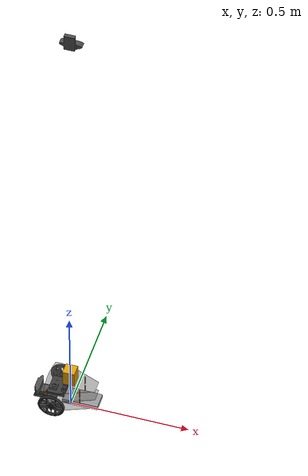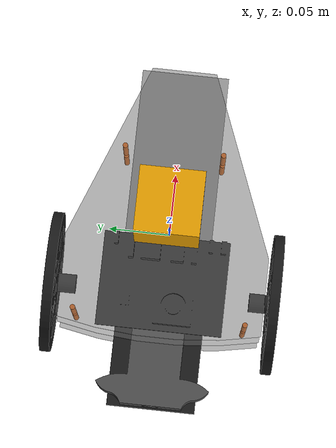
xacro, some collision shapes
<?xml version="1.0"?>
<robot name="puzzlebot" xmlns:xacro="http://ros.org/wiki/xacro">
  <xacro:property name="package_name" value="gemelo_digital_puzzlebot"/>
  <xacro:property name="PI" value="3.14159265"/>
  <xacro:property name="wheelSeparation" value="0.209"/> <!--0.17 (bien en simulación) | 0.207 (bien en gemelo)-->
  <xacro:property name="wheelDiameter" value="0.112"/>
  <xacro:property name="wheelThickness" value="0.008"/>
  <xacro:property name="base_elevation" value="0.025"/>

  <xacro:arg name="base_color"    default="0.0 1.0 0.0 1.0"/>
  <xacro:arg name="ns" default="r1"/>

  <material name="gray">
    <color rgba="0.4 0.4 0.4 0.5"/>
  </material>

  <material name="gray2">
    <color rgba="0.6 0.6 0.6 1.0"/>
  </material>
  <material name="gray3">
    <color rgba="0.3 0.3 0.3 1.0"/>
  </material>

  <material name="black">
    <color rgba="0.1 0.1 0.1 1.0"/>
  </material>

  <material name="golden">
    <color rgba="1.0 0.4 0.0 1.0"/>
  </material>

  <material name="red">
    <color rgba="1.0 0.0 0.0 1.0"/>
  </material>

  <link name="$(arg ns)/base_footprint"/>

  <joint name="$(arg ns)/base1_joint" type="fixed">
    <parent link="$(arg ns)/base_footprint"/>
    <child link="$(arg ns)/base1_link"/>
    <origin xyz="0 0 ${wheelDiameter/2-base_elevation}" rpy = "0 0 0"/> <!--0 ${wheelSeparation/2} ${wheelDiameter/2-base_elevation}-->
    <axis xyz="0 0 0"/>
  </joint>

  <link name="$(arg ns)/base1_link">
    <visual>
      <origin xyz="0.0 0.0 0.0" rpy="0 0 ${PI}"/>
      <geometry>
        <mesh filename = "package://${package_name}/meshes/base_puzzlebot.stl" scale="0.01 0.01 0.01"/>
      </geometry>
      <material name="gray"/>
    </visual>
    <collision>
      <origin xyz="0.01 0 0.0025" rpy="0 0 ${PI/2}"/>
      <geometry>
        <box size="0.16 0.21 0.005"/>
      </geometry>
    </collision>
    <inertial>
      <origin xyz="-0.0550 0 0" rpy="0 0 0"/>
      <mass value="0.485"/>
      <inertia ixx="0.001881" ixy="0.0" ixz="0.0" iyy="0.001133" iyz="0.0" izz="0.002815" />
    </inertial>
  </link>

  <joint name="$(arg ns)/base2_joint" type="fixed">
      <parent link="$(arg ns)/base1_link"/>
      <child link="$(arg ns)/base2_link"/>
      <origin xyz="0 0 ${wheelDiameter/2-base_elevation + 0.020}" rpy = "0 0 0"/>
      <axis xyz="0 0 0"/>
    </joint>

    <link name="$(arg ns)/base2_link">
      <visual>
        <origin xyz="0 0 0" rpy="0 0 ${PI}"/>
        <geometry>
          <mesh filename = "package://${package_name}/meshes/base_puzzlebot.stl" scale="0.01 0.01 0.01"/>
        </geometry>
        <material name="gray"/>
      </visual>
      <collision>
        <origin xyz="0.01 0 0.0025" rpy="0 0 ${PI/2}"/>
        <geometry>
          <box size="0.16 0.21 0.005"/>
        </geometry>
      </collision>
    </link>

    <joint name="$(arg ns)/base3_joint" type="fixed">
      <parent link="$(arg ns)/base2_link"/>
      <child link="$(arg ns)/base3_link"/>
      <origin xyz="0 0 ${wheelDiameter/2-base_elevation + 0.020}" rpy = "0 0 0"/>
      <axis xyz="0 0 0"/>
    </joint>

    <link name="$(arg ns)/base3_link">
      <visual>
        <origin xyz="0 0 0" rpy="0 0 ${PI}"/>
        <geometry>
          <mesh filename = "package://${package_name}/meshes/base_puzzlebot.stl" scale="0.01 0.01 0.01"/>
        </geometry>
        <material name="gray"/>
      </visual>
      <collision>
        <origin xyz="0.01 0 0.0025" rpy="0 0 ${PI/2}"/>
        <geometry>
          <box size="0.16 0.21 0.005"/>
        </geometry>
      </collision>
    </link>

    <joint name="$(arg ns)/rubik_joint" type="fixed">
      <parent link="$(arg ns)/base2_link"/>
      <child link="$(arg ns)/rubik_link"/>
      <origin xyz="-0.05 0 0.005" rpy = "0 0 ${PI/2}"/>
      <axis xyz="0 0 0"/>
    </joint>

    <link name="$(arg ns)/rubik_link">
      <visual>
        <origin xyz="0 0 0" rpy="0 0 0"/>
        <geometry>
          <mesh filename = "package://${package_name}/meshes/rubik.stl" scale="0.001 0.001 0.001"/>
        </geometry>
        <material name="black"/>
      </visual>
      <collision>
        <origin xyz="0 0 0" rpy="0 0 0"/>
        <geometry>
          <box size="0.1 0.07 0.002"/>
        </geometry>
      </collision>
    </link>

    <joint name="$(arg ns)/battery_joint" type="fixed">
      <parent link="$(arg ns)/base1_link"/>
      <child link="$(arg ns)/battery_link"/>
      <origin xyz="0.05 0 0.0145" rpy = "0 0 0"/>
      <axis xyz="0 0 0"/>
    </joint>

    <link name="$(arg ns)/battery_link">
      <visual>
        <origin xyz="0 0 0" rpy="0 0 0"/>
        <geometry>
          <box size="0.15 0.07 0.02"/>
        </geometry>
        <material name="gray2"/>
      </visual>
      <collision>
        <origin xyz="0 0 0" rpy="0 0 0"/>
        <geometry>
          <box size="0.15 0.07 0.02"/>
        </geometry>
      </collision>
      <inertial>
        <origin xyz="0 0 0" rpy="0 0 0"/>
        <mass value="1.0"/>
        <inertia ixx="0.000442" ixy="0.0" ixz="0.0" iyy="0.001908" iyz="0.0" izz="0.002283" />
      </inertial>
    </link>

  <joint name="$(arg ns)/standoff_joint_1" type="fixed">
    <parent link="$(arg ns)/base1_link"/>
    <child link="$(arg ns)/standoff1_link"/>
    <origin xyz="0.05 0.04 ${wheelDiameter/2-base_elevation}" rpy = "0 0 0"/>
    <axis xyz="0 0 0"/>
  </joint>

  <link name="$(arg ns)/standoff1_link">
    <visual>
      <origin xyz="0 0 0" rpy="0 0 0"/>
      <geometry>
        <cylinder length="0.04" radius="0.002"/>
      </geometry>
      <material name="golden"/>
    </visual>
    <collision>
      <origin xyz="0 0 0" rpy="0 0 0"/>
      <geometry>
        <cylinder length="0.04" radius="0.002"/>
      </geometry>
    </collision>
  </link>

  <joint name="$(arg ns)/standoff_joint_2" type="fixed">
    <parent link="$(arg ns)/base1_link"/>
    <child link="$(arg ns)/standoff2_link"/>
    <origin xyz="0.05 -0.037 ${wheelDiameter/2-base_elevation}" rpy = "0 0 0"/>
    <axis xyz="0 0 0"/>
  </joint>

  <link name="$(arg ns)/standoff2_link">
    <visual>
      <origin xyz="0 0 0" rpy="0 0 0"/>
      <geometry>
        <cylinder length="0.04" radius="0.002"/>
      </geometry>
      <material name="golden"/>
    </visual>
    <collision>
      <origin xyz="0 0 0" rpy="0 0 0"/>
      <geometry>
        <cylinder length="0.04" radius="0.002"/>
      </geometry>
    </collision>
  </link>

  <joint name="$(arg ns)/standoff_joint_3" type="fixed">
    <parent link="$(arg ns)/base1_link"/>
    <child link="$(arg ns)/standoff3_link"/>
    <origin xyz="-0.08 -0.067  ${wheelDiameter/2-base_elevation}" rpy = "0 0 0"/>
    <axis xyz="0 0 0"/>
  </joint>

  <link name="$(arg ns)/standoff3_link">
    <visual>
      <origin xyz="0 0 0" rpy="0 0 0"/>
      <geometry>
        <cylinder length="0.04" radius="0.002"/>
      </geometry>
      <material name="golden"/>
    </visual>
    <collision>
      <origin xyz="0 0 0" rpy="0 0 0"/>
      <geometry>
        <cylinder length="0.04" radius="0.002"/>
      </geometry>
    </collision>
  </link>

  <joint name="$(arg ns)/standoff_joint_4" type="fixed">
    <parent link="$(arg ns)/base1_link"/>
    <child link="$(arg ns)/standoff4_link"/>
    <origin xyz="-0.08 0.067 ${wheelDiameter/2-base_elevation}" rpy = "0 0 0"/>
    <axis xyz="0 0 0"/>
  </joint>

  <link name="$(arg ns)/standoff4_link">
    <visual>
      <origin xyz="0 0 0" rpy="0 0 0"/>
      <geometry>
        <cylinder length="0.04" radius="0.002"/>
      </geometry>
      <material name="golden"/>
    </visual>
    <collision>
      <origin xyz="0 0 0" rpy="0 0 0"/>
      <geometry>
        <cylinder length="0.04" radius="0.002"/>
      </geometry>
    </collision>
  </link>

  <!-- Standoffs segundo piso -->
  <joint name="$(arg ns)/standoff_joint_5" type="fixed">
    <parent link="$(arg ns)/base2_link"/>
    <child link="$(arg ns)/standoff5_link"/>
    <origin xyz="0.05 0.04 ${wheelDiameter/2-base_elevation}" rpy = "0 0 0"/>
    <axis xyz="0 0 0"/>
  </joint>

  <link name="$(arg ns)/standoff5_link">
    <visual>
      <origin xyz="0 0 0" rpy="0 0 0"/>
      <geometry>
        <cylinder length="0.04" radius="0.002"/>
      </geometry>
      <material name="golden"/>
    </visual>
    <collision>
      <origin xyz="0 0 0" rpy="0 0 0"/>
      <geometry>
        <cylinder length="0.04" radius="0.002"/>
      </geometry>
    </collision>
  </link>

  <joint name="$(arg ns)/standoff_joint_6" type="fixed">
    <parent link="$(arg ns)/base2_link"/>
    <child link="$(arg ns)/standoff6_link"/>
    <origin xyz="0.05 -0.037 ${wheelDiameter/2-base_elevation}" rpy = "0 0 0"/>
    <axis xyz="0 0 0"/>
  </joint>

  <link name="$(arg ns)/standoff6_link">
    <visual>
      <origin xyz="0 0 0" rpy="0 0 0"/>
      <geometry>
        <cylinder length="0.04" radius="0.002"/>
      </geometry>
      <material name="golden"/>
    </visual>
    <collision>
      <origin xyz="0 0 0" rpy="0 0 0"/>
      <geometry>
        <cylinder length="0.04" radius="0.002"/>
      </geometry>
    </collision>
  </link>

  <joint name="$(arg ns)/standoff_joint_7" type="fixed">
    <parent link="$(arg ns)/base2_link"/>
    <child link="$(arg ns)/standoff7_link"/>
    <origin xyz="-0.08 -0.067  ${wheelDiameter/2-base_elevation}" rpy = "0 0 0"/>
    <axis xyz="0 0 0"/>
  </joint>

  <link name="$(arg ns)/standoff7_link">
    <visual>
      <origin xyz="0 0 0" rpy="0 0 0"/>
      <geometry>
        <cylinder length="0.04" radius="0.002"/>
      </geometry>
      <material name="golden"/>
    </visual>
    <collision>
      <origin xyz="0 0 0" rpy="0 0 0"/>
      <geometry>
        <cylinder length="0.04" radius="0.002"/>
      </geometry>
    </collision>
  </link>

  <joint name="$(arg ns)/standoff_joint_8" type="fixed">
    <parent link="$(arg ns)/base2_link"/>
    <child link="$(arg ns)/standoff8_link"/>
    <origin xyz="-0.08 0.067 ${wheelDiameter/2-base_elevation}" rpy = "0 0 0"/>
    <axis xyz="0 0 0"/>
  </joint>

  <link name="$(arg ns)/standoff8_link">
    <visual>
      <origin xyz="0 0 0" rpy="0 0 0"/>
      <geometry>
        <cylinder length="0.04" radius="0.002"/>
      </geometry>
      <material name="golden"/>
    </visual>
    <collision>
      <origin xyz="0 0 0" rpy="0 0 0"/>
      <geometry>
        <cylinder length="0.04" radius="0.002"/>
      </geometry>
    </collision>
  </link>

  <joint name="$(arg ns)/base_panel_right_wheel_joint" type="fixed">
    <parent link="$(arg ns)/base1_link"/>
    <child link="$(arg ns)/right_panel_link"/>
    <origin xyz="-0.0550 0.073 ${wheelDiameter/2-base_elevation}" rpy = "0 0 0"/>
    <axis xyz="0 0 0"/>
  </joint>

  <link name="$(arg ns)/right_panel_link">
    <visual>
      <origin xyz="0 0 0" rpy="0 0 0"/>
      <geometry>
        <box size="0.025 0.005 0.04"/>
      </geometry>
      <material name="gray"/>
    </visual>
    <collision>
      <origin xyz="0 0 0" rpy="0 0 0"/>
      <geometry>
        <box size="0.025 0.005 0.04"/>
      </geometry>
    </collision>
  </link>

  <joint name="$(arg ns)/base_panel_left_wheel_joint" type="fixed">
    <parent link="$(arg ns)/base1_link"/>
    <child link="$(arg ns)/left_panel_link"/>
    <origin xyz="-0.0550 -0.073 ${wheelDiameter/2-base_elevation}" rpy = "0 0 0"/>
    <axis xyz="0 0 0"/>
  </joint>

  <link name="$(arg ns)/left_panel_link">
    <visual>
      <origin xyz="0 0 0" rpy="0 0 0"/>
      <geometry>
        <box size="0.025 0.005 0.04"/>
      </geometry>
      <material name="gray"/>
    </visual>
    <collision>
      <origin xyz="0 0 0" rpy="0 0 0"/>
      <geometry>
        <box size="0.025 0.005 0.04"/>
      </geometry>
    </collision>
  </link>

  <joint name="$(arg ns)/cylinder_wheel_right_joint" type="fixed">
    <parent link="$(arg ns)/right_panel_link"/>
    <child link="$(arg ns)/cylinder_wheel_right_link"/>
    <origin xyz="0 0.004 0" rpy = "0 0 0"/>
    <axis xyz="0 0 0"/>
  </joint>

  <link name="$(arg ns)/cylinder_wheel_right_link">
    <visual>
      <origin xyz="0 0 0" rpy="${PI/2} 0 0"/>
      <geometry>
        <cylinder length="0.015" radius="0.0075"/>
      </geometry>
      <material name="black"/>
    </visual>
    <collision>
      <origin xyz="0 0 0" rpy="${PI/2} 0 0"/>
      <geometry>
        <cylinder length="0.015" radius="0.0075"/>
      </geometry>
    </collision>
  </link>

  <joint name="$(arg ns)/cylinder_wheel_left_joint" type="fixed">
    <parent link="$(arg ns)/left_panel_link"/>
    <child link="$(arg ns)/cylinder_wheel_left_link"/>
    <origin xyz="0 -0.004 0" rpy = "0 0 0"/>
    <axis xyz="0 0 0"/>
  </joint>

  <link name="$(arg ns)/cylinder_wheel_left_link">
    <visual>
      <origin xyz="0 0 0" rpy="${-PI/2} 0 0"/>
      <geometry>
        <cylinder length="0.015" radius="0.0075"/>
      </geometry>
      <material name="black"/>
    </visual>
    <collision>
      <origin xyz="0 0 0" rpy="${-PI/2} 0 0"/>
      <geometry>
        <cylinder length="0.015" radius="0.0075"/>
      </geometry>
    </collision>
  </link>

  <joint name="$(arg ns)/wheel_right_joint" type="continuous">
    <parent link="$(arg ns)/cylinder_wheel_right_link"/>
    <child link="$(arg ns)/wheel_right_link"/>
    <origin xyz="0 0.0155 0" rpy = "0 0 0"/>
    <axis xyz="0 -1 0"/>
  </joint>

  <link name="$(arg ns)/wheel_right_link">
    <visual>
      <origin xyz="0 0 0" rpy="${PI/2} 0 0"/>
      <geometry>
        <mesh filename = "package://${package_name}/meshes/rueda_puzzlebot.stl" scale="0.001 0.001 0.001"/>
      </geometry>
      <material name="black"/>
    </visual>
    <collision>
      <origin xyz="0 -0.005 0" rpy="${PI/2} 0 0"/>
      <geometry>
        <cylinder length="0.008" radius="0.056"/>
      </geometry>
    </collision>
    <inertial>
      <origin xyz="0 0 0" />
      <mass value="0.056" />
      <inertia ixx="0.000035" ixy="0.0" ixz="0.0" iyy="0.00007" iyz="0.0" izz="0.000035" />
    </inertial>
  </link>

  <joint name="$(arg ns)/wheel_left_joint" type="continuous">
    <parent link="$(arg ns)/cylinder_wheel_left_link"/>
    <child link="$(arg ns)/wheel_left_link"/>
    <origin xyz="0.0 -0.0075 0" rpy = "0 0 0"/>
    <axis xyz="0 -1 0"/>
  </joint>

  <link name="$(arg ns)/wheel_left_link">
    <visual>
      <origin xyz="0 0 0" rpy="${PI/2} 0 0"/>
      <geometry>
        <mesh filename = "package://${package_name}/meshes/rueda_puzzlebot.stl" scale="0.001 0.001 0.001"/>
      </geometry>
      <material name="black"/>
    </visual>
    <collision>
      <origin xyz="0 0 0" rpy="${PI/2} 0 0"/>
      <geometry>
        <cylinder length="0.008" radius="0.056"/>
      </geometry>
    </collision>
    <inertial>
      <origin xyz="0 0 0" />
      <mass value="0.056" />
      <inertia ixx="0.000035" ixy="0.0" ixz="0.0" iyy="0.00007" iyz="0.0" izz="0.000035" />
    </inertial>
  </link>

  <joint name="$(arg ns)/caster_wheel_joint" type="fixed">
    <parent link="$(arg ns)/base1_link"/>
    <child link="$(arg ns)/caster_wheel_link"/>
    <origin xyz="0.1 0 -0.0125" rpy="0 0 0"/>
  </joint>

  <link name="$(arg ns)/caster_wheel_link">
    <visual>
      <origin xyz="0 0 0" rpy="0 0 0"/>
      <geometry>
        <sphere radius="0.0125"/>
      </geometry>
      <material name="black"/>
    </visual>

    <collision>
      <origin xyz="0 0 0" rpy="0 0 0"/>
      <geometry>
        <sphere radius="0.0125"/>
      </geometry>
    </collision>

    <inertial>
      <mass value="0.01"/>
      <origin xyz="0 0 0" rpy="0 0 0"/>
      <inertia
        ixx="0.000000625" ixy="0" ixz="0"
        iyy="0.000000625" iyz="0"
        izz="0.000000625"/>
    </inertial>
  </link>

   <!-- Camara LOGI -->

   <joint name="$(arg ns)/base_camera_logi_joint" type="fixed">
    <parent link="$(arg ns)/base1_link"/>
    <child link="$(arg ns)/base_camera_logi_link"/>
    <origin xyz="-0.1 0 0.0075" rpy="0 0 ${-PI/2}"/>
  </joint>

  <link name="$(arg ns)/base_camera_logi_link">
    <visual>
      <origin xyz="0 0 0" rpy="0 0 0"/>
      <geometry>
        <box size="0.071 0.094 0.005"/>
      </geometry>
      <material name="black"/>
    </visual>
    <collision>
      <origin xyz="0 0 0" rpy="0 0 0"/>
      <geometry>
        <box size="0.071 0.094 0.005"/>
      </geometry>
    </collision>
  </link>

  <joint name="$(arg ns)/logi_camera_joint" type="fixed">
    <parent link="$(arg ns)/base_camera_logi_link"/>
    <child link="$(arg ns)/logi_camera_link"/>
    <origin xyz="0.008 0 0.0025" rpy="0 0 ${-PI/2}"/>
    <axis xyz="0 0 1" />
  </joint>

  <link name="$(arg ns)/logi_camera_link">
    <visual>
      <origin xyz="0 0 0" rpy="0 0 0"/>
      <geometry>
        <mesh filename = "package://${package_name}/meshes/logi_camera.stl" scale="0.001 0.001 0.001"/>
      </geometry>
      <material name="gray3"/>
    </visual>
    <collision>
      <origin xyz="0 0 0" rpy="0 0 0"/>
      <geometry>
        <box size="0.071 0.094 0.0433"/>
      </geometry>
    </collision>
  </link>

  <gazebo reference="$(arg ns)/logi_camera_link">
    <sensor name="camera" type="camera">
      <ignition_frame_id>$(arg ns)/logi_camera_link</ignition_frame_id>
      <optical_frame_id>$(arg ns)/logi_camera_link</optical_frame_id>
      <camera>
        <horizontal_fov>1.229</horizontal_fov>
        <image>
          <width>320</width>
          <height>240</height>
          <format>R8G8B8</format>
        </image>
        <camera_info_topic>$(arg ns)/camera/camera_info</camera_info_topic>
        <clip>
          <near>0.1</near>
          <far>100</far>
        </clip>
        <distortion>
          <k1>0</k1>
          <k2>0</k2>
          <k3>0</k3>
          <p1>0</p1>
          <p2>0</p2>
          <center>0.5 0.5</center>
        </distortion>
      </camera>
      <always_on>1</always_on>
      <update_rate>10</update_rate>
      <visualize>false</visualize>
      <topic>$(arg ns)/camera/image_raw</topic>
      <enable_metrics>true</enable_metrics>
    </sensor>
  </gazebo>

  <!-- Cámara Logi aérea -->
  <joint name="$(arg ns)/logi_camera_joint2" type="fixed">
    <parent link="$(arg ns)/base1_link"/>
    <child link="$(arg ns)/logi_camera_link2"/>
    <origin xyz="0.008 0 2.0" rpy="0 ${PI/2} ${PI/2}"/>
    <axis xyz="0 0 1" />
  </joint>

  <link name="$(arg ns)/logi_camera_link2">
    <visual>
      <origin xyz="0 0 0" rpy="0 0 0"/>
      <geometry>
        <mesh filename = "package://${package_name}/meshes/logi_camera.stl" scale="0.001 0.001 0.001"/>
      </geometry>
      <material name="gray3"/>
    </visual>
    <collision>
      <origin xyz="0 0 0" rpy="0 0 0"/>
      <geometry>
        <box size="0.071 0.094 0.0433"/>
      </geometry>
    </collision>
  </link>

  <gazebo reference="$(arg ns)/logi_camera_link2">
    <sensor name="camera2" type="camera">
      <ignition_frame_id>$(arg ns)/logi_camera_link2</ignition_frame_id>
      <optical_frame_id>$(arg ns)/logi_camera_link2</optical_frame_id>
      <camera>
        <horizontal_fov>1.229</horizontal_fov>
        <image>
          <width>320</width>
          <height>240</height>
          <format>R8G8B8</format>
        </image>
        <camera_info_topic>$(arg ns)/camera2/camera_info2</camera_info_topic>
        <clip>
          <near>0.1</near>
          <far>100</far>
        </clip>
        <distortion>
          <k1>0</k1>
          <k2>0</k2>
          <k3>0</k3>
          <p1>0</p1>
          <p2>0</p2>
          <center>0.5 0.5</center>
        </distortion>
      </camera>
      <always_on>1</always_on>
      <update_rate>10</update_rate>
      <visualize>false</visualize>
      <topic>$(arg ns)/camera2/image_raw2</topic>
      <enable_metrics>true</enable_metrics>
    </sensor>
  </gazebo>

  <!-- LIDAR -->
  <joint name="$(arg ns)/hokuyo_joint" type="fixed">
    <parent link="$(arg ns)/base3_link"/>
    <child link="$(arg ns)/hokuyo_link" />
    <origin xyz="0.0 0 0.04" rpy="0 0 ${PI}"/>
    <axis xyz="0 0 1" />
  </joint>

  <link name="$(arg ns)/hokuyo_link">
    <visual>
      <origin xyz="0 0 0" rpy="0 0 0"/>
      <geometry>
        <mesh filename="package://${package_name}/meshes/hokuyo.dae"/>
        <material name="black" />
      </geometry>
    </visual>
    <collision>
      <origin xyz="0 0 0" rpy="0 0 0"/>
      <geometry>
        <box size="0.05 0.05 0.07"/>
      </geometry>
    </collision>
  </link>

  <gazebo reference = "$(arg ns)/hokuyo_link">
    <sensor name='gpu_lidar' type='gpu_lidar'>
      <ignition_frame_id>$(arg ns)/hokuyo_link</ignition_frame_id>
      <update_rate>40</update_rate>
      <ray>
        <scan>
          <horizontal>
            <samples>1</samples>
            <resolution>1</resolution>
            <min_angle>0</min_angle>
            <max_angle>0</max_angle>
          </horizontal>
        </scan>
        <range>
          <min>0.1</min>
          <max>0.5</max>
          <resolution>0.01</resolution>
        </range>
        <noise>
          <type> gaussian</type>
          <mean>0.0</mean>
          <stddev>0.01</stddev>
        </noise>
      </ray>
      <alwaysOn>1</alwaysOn>
      <visualize>true</visualize>
      <topic>$(arg ns)/hokuyo</topic>
    </sensor>
  </gazebo>

   <!-- IMU -->
  <gazebo reference = "$(arg ns)/base_footprint">
    <sensor name = "imu_sensor" type="imu">
      <ignition_frame_id>$(arg ns)/base_footprint</ignition_frame_id>
      <always_on>1</always_on>
      <update_rate>50</update_rate>
      <visualize>false</visualize>
      <topic>$(arg ns)/imu</topic>
      <imu>
        <enable_orientation>0</enable_orientation>
        <angular_velocity>
          <x>
            <noise type = "gaussian">
              <mean>0</mean>
              <stddev>0.009</stddev>
              <bias_mean>0.00075</bias_mean>
              <bias_stddev>0.005</bias_stddev>
              <dynamic_bias_stddev>0.00002</dynamic_bias_stddev>
              <precision>0.00025</precision>
            </noise>
          </x>
          <y>
            <noise type = "gaussian">
              <mean>0</mean>
              <stddev>0.009</stddev>
              <bias_mean>0.00075</bias_mean>
              <bias_stddev>0.005</bias_stddev>
              <dynamic_bias_stddev>0.00002</dynamic_bias_stddev>
              <precision>0.00025</precision>
            </noise>
          </y>
          <z>
            <noise type = "gaussian">
              <mean>0</mean>
              <stddev>0.009</stddev>
              <bias_mean>0.00075</bias_mean>
              <bias_stddev>0.005</bias_stddev>
              <dynamic_bias_stddev>0.00002</dynamic_bias_stddev>
              <precision>0.00025</precision>
            </noise>
          </z>
        </angular_velocity>
        <linear_acceleration>
          <x>
            <noise type = "gaussian">
              <mean>0</mean>
              <stddev>0.021</stddev>
              <bias_mean>0.05</bias_mean>
              <bias_stddev>0.0075</bias_stddev>
              <dynamic_bias_stddev>0.000375</dynamic_bias_stddev>
              <dynamic_bias_correlation_time>175.0</dynamic_bias_correlation_time>
              <precision>0.005</precision>
            </noise>
          </x>
          <y>
            <noise type = "gaussian">
              <mean>0</mean>
              <stddev>0.021</stddev>
              <bias_mean>0.05</bias_mean>
              <bias_stddev>0.0075</bias_stddev>
              <dynamic_bias_stddev>0.000375</dynamic_bias_stddev>
              <dynamic_bias_correlation_time>175.0</dynamic_bias_correlation_time>
              <precision>0.005</precision>
            </noise>
          </y>
          <z>
            <noise type = "gaussian">
              <mean>0</mean>
              <stddev>0.021</stddev>
              <bias_mean>0.05</bias_mean>
              <bias_stddev>0.0075</bias_stddev>
              <dynamic_bias_stddev>0.000375</dynamic_bias_stddev>
              <dynamic_bias_correlation_time>175.0</dynamic_bias_correlation_time>
              <precision>0.005</precision>
            </noise>
          </z>
        </linear_acceleration>
      </imu>
    </sensor>
  </gazebo>

  <gazebo>
    <plugin
      filename="ignition-gazebo-diff-drive-system"
      name="ignition::gazebo::systems::DiffDrive">
      <left_joint>$(arg ns)/wheel_left_joint</left_joint>
      <right_joint>$(arg ns)/wheel_right_joint</right_joint>
      <wheel_separation>${wheelSeparation}</wheel_separation>
      <wheel_radius>${wheelDiameter/2}</wheel_radius>
      <odom_publish_frequency>20</odom_publish_frequency>
      <max_linear_acceleration>2.0</max_linear_acceleration>
      <min_linear_acceleration>-2.0</min_linear_acceleration>
      <max_angular_acceleration>5</max_angular_acceleration>
      <min_angular_acceleration>-5</min_angular_acceleration>
      <max_linear_velocity>1.0</max_linear_velocity>
      <min_linear_velocity>-1.0</min_linear_velocity>
      <max_angular_velocity>5</max_angular_velocity>
      <min_angular_velocity>-5</min_angular_velocity>
    </plugin>

    <plugin
      filename="gz-sim-joint-state-publisher-system"
      name="gz::sim::systems::JointStatePublisher">
    </plugin>

  </gazebo>

  <gazebo reference="$(arg ns)/caster_wheel_link">
    <mu1>0.01</mu1>
    <mu2>0.01</mu2>
    <kp>1000000.0</kp>
    <kd>1.0</kd>
  </gazebo>

</robot>
